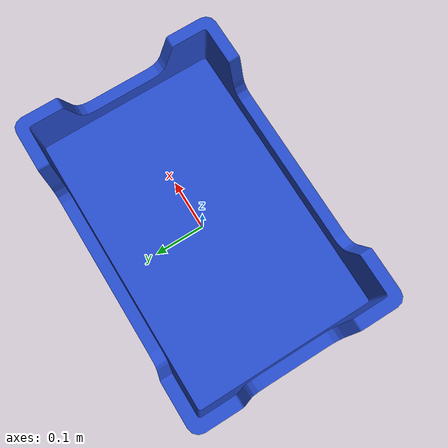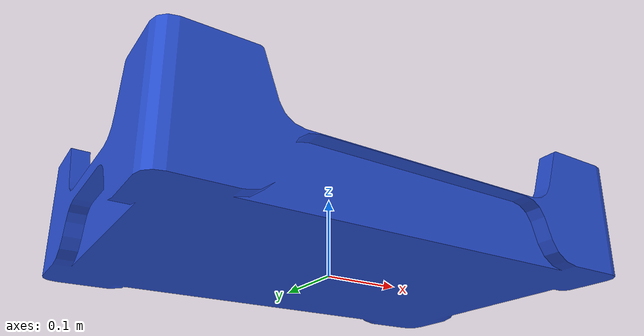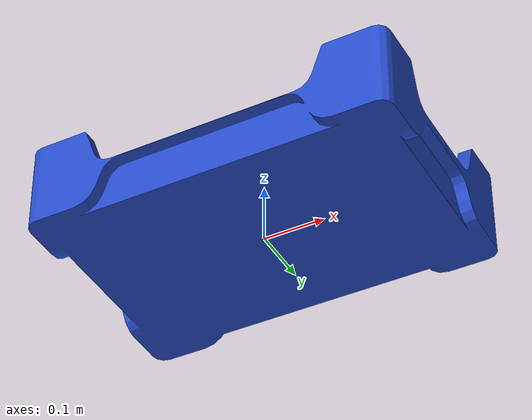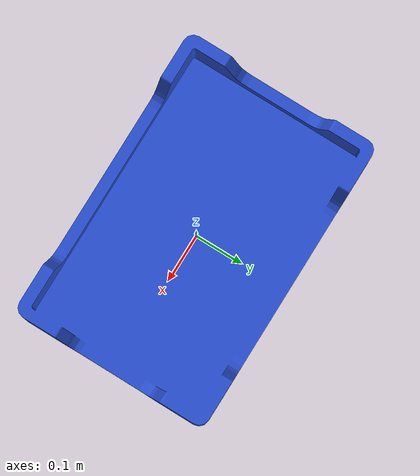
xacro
<?xml version="1.0" ?>
<robot name="crate" xmlns:xacro="http://wiki.ros.org/xacro">

  <xacro:include filename="$(find component_sorting_description)/urdf/inertia.urdf.xacro" />
  <xacro:property name="PI" value="3.1415926535897931"/>

  <!-- Crate config-->
  <xacro:arg name="prefix" default="crate_"/>
  <xacro:property name="prefix" value="$(arg prefix)" />

  <link name="${prefix}base_link">
    <inertial>
      <mass value="10" />
      <origin xyz="0 0 ${0.14/2}" rpy="0 0 0" />
      <solid_cuboid_inertia m="10" h="${0.40}" d="${0.14}" w="${0.60}"/>
    </inertial>
    <visual>
      <origin xyz="0 0 ${0.14/2}" rpy="0 0 0"/>
      <geometry>
        <mesh filename="package://component_sorting_description/meshes/crate.stl"/>
      </geometry>
    </visual>
    <collision>
      <origin xyz="0 0 ${0.14/2}"/>
      <geometry>
        <mesh filename="package://component_sorting_description/meshes/crate.stl"/>
      </geometry>
    </collision>
  </link>

  <gazebo>
    <static>false</static>
    <allow_auto_disable>true</allow_auto_disable>
  </gazebo>

  <gazebo reference="${prefix}base_link">
    <material>Gazebo/Blue</material>
    <collision>
      <max_contacts>5</max_contacts>
      <surface>
          <friction>
              <ode>
              <mu>100</mu>
              <mu2>50</mu2>
              </ode>
          </friction>
          <contact>
              <collide_without_contact>0</collide_without_contact>
              <collide_without_contact_bitmask>1</collide_without_contact_bitmask>
              <collide_bitmask>1</collide_bitmask>
              <ode>
                  <soft_cfm>0</soft_cfm>
                  <soft_erp>0.2</soft_erp>
                  <kp>1e+13</kp>
                  <kd>1</kd>
                  <max_vel>0.00</max_vel>
                  <min_depth>0.001</min_depth>
              </ode>
          </contact>
      </surface>
    </collision>
  </gazebo>

</robot>
